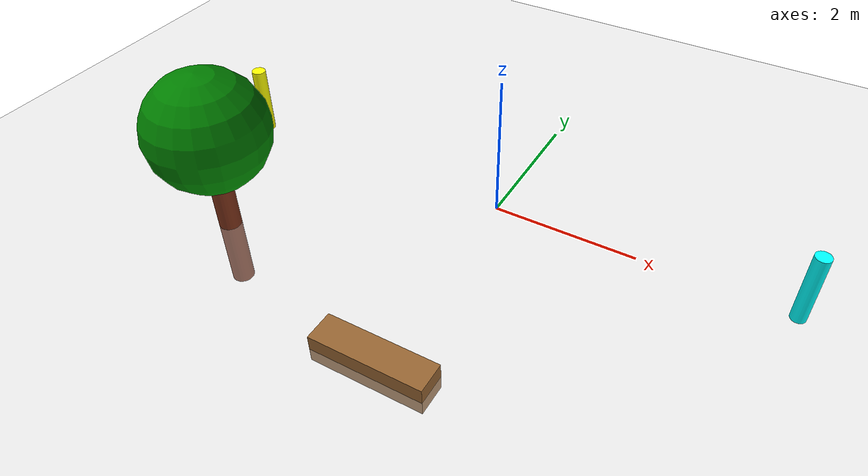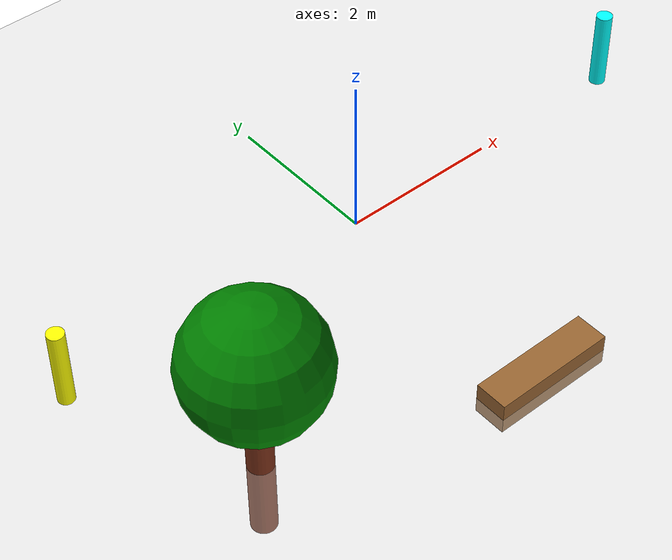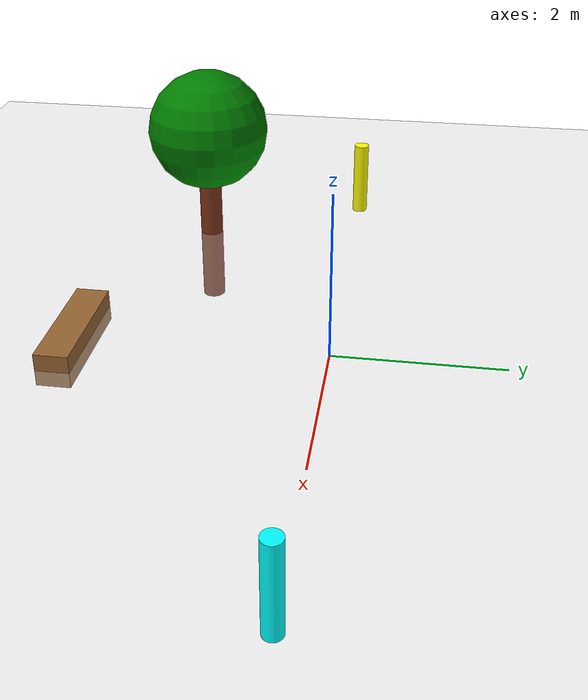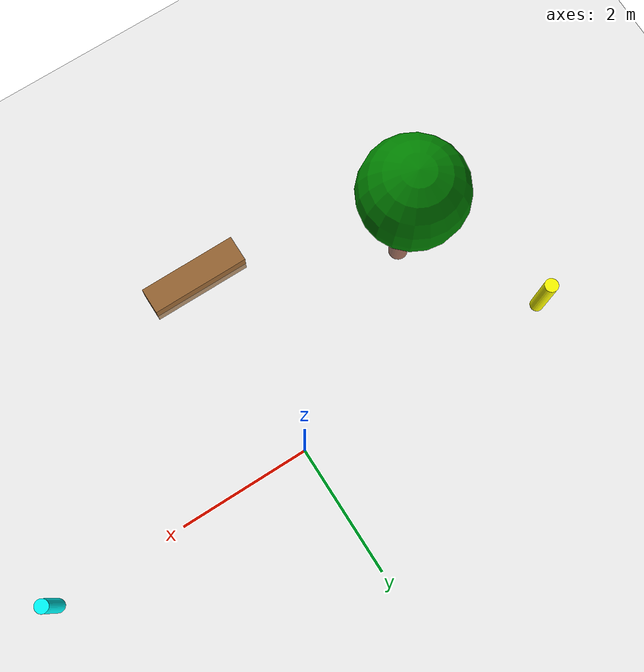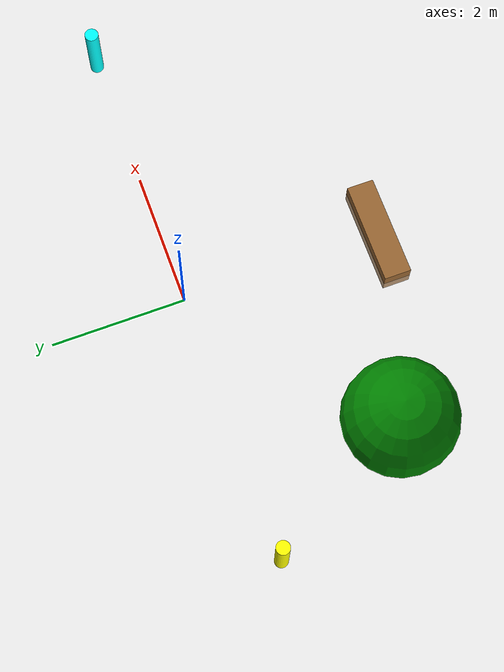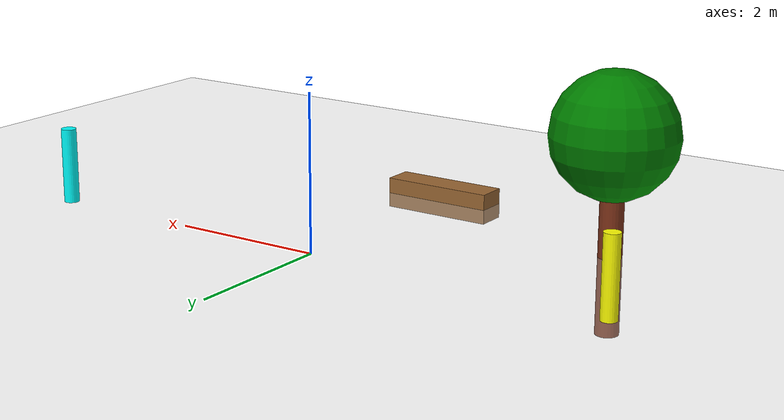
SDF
<sdf version="1.7">
 <world name="outdoor_area">
  <include><uri>model://sun</uri></include>
  <include><uri>model://ground_plane</uri></include>
  <model name="tree1">
   <pose>-3 -2 0 0 0 0</pose>
   <link name="trunk">
    <collision name="collision">
     <geometry><cylinder><radius>0.15</radius><length>2.0</length></cylinder></geometry>
    </collision>
    <visual name="visual">
     <geometry><cylinder><radius>0.15</radius><length>2.0</length></cylinder></geometry>
     <material><ambient>0.5 0.2 0.1 1</ambient><diffuse>0.5 0.2 0.1 1</diffuse></material>
    </visual>
   </link>
   <link name="leaves">
    <pose>0 0 1.5 0 0 0</pose>
    <collision name="collision"><geometry><sphere><radius>0.8</radius></sphere></geometry></collision>
    <visual name="visual">
     <geometry><sphere><radius>0.8</radius></sphere></geometry>
     <material><ambient>0 0.5 0 1</ambient><diffuse>0 0.5 0 1</diffuse></material>
    </visual>
   </link>
   <joint name="leaves_joint" type="fixed"><parent>trunk</parent><child>leaves</child></joint>
  </model>
  <model name="bench">
   <pose>0 -3 0 0 0 0</pose>
   <link name="base">
    <collision name="collision"><geometry><box><size>1.5 0.4 0.4</size></box></geometry></collision>
    <visual name="visual">
     <geometry><box><size>1.5 0.4 0.4</size></box></geometry>
     <material><ambient>0.6 0.4 0.2 1</ambient><diffuse>0.6 0.4 0.2 1</diffuse></material>
    </visual>
   </link>
  </model>
  <model name="waypoint1">
   <pose>-4 0 0.5 0 0 0</pose>
   <link name="base">
    <visual name="visual">
     <geometry><cylinder><radius>0.1</radius><length>1</length></cylinder></geometry>
     <material><ambient>1 1 0 1</ambient><diffuse>1 1 0 1</diffuse></material>
    </visual>
   </link>
  </model>
  <model name="waypoint2">
   <pose>4 0 0.5 0 0 0</pose>
   <link name="base">
    <visual name="visual">
     <geometry><cylinder><radius>0.1</radius><length>1</length></cylinder></geometry>
     <material><ambient>0 1 1 1</ambient><diffuse>0 1 1 1</diffuse></material>
    </visual>
   </link>
  </model>
 </world>
</sdf>
